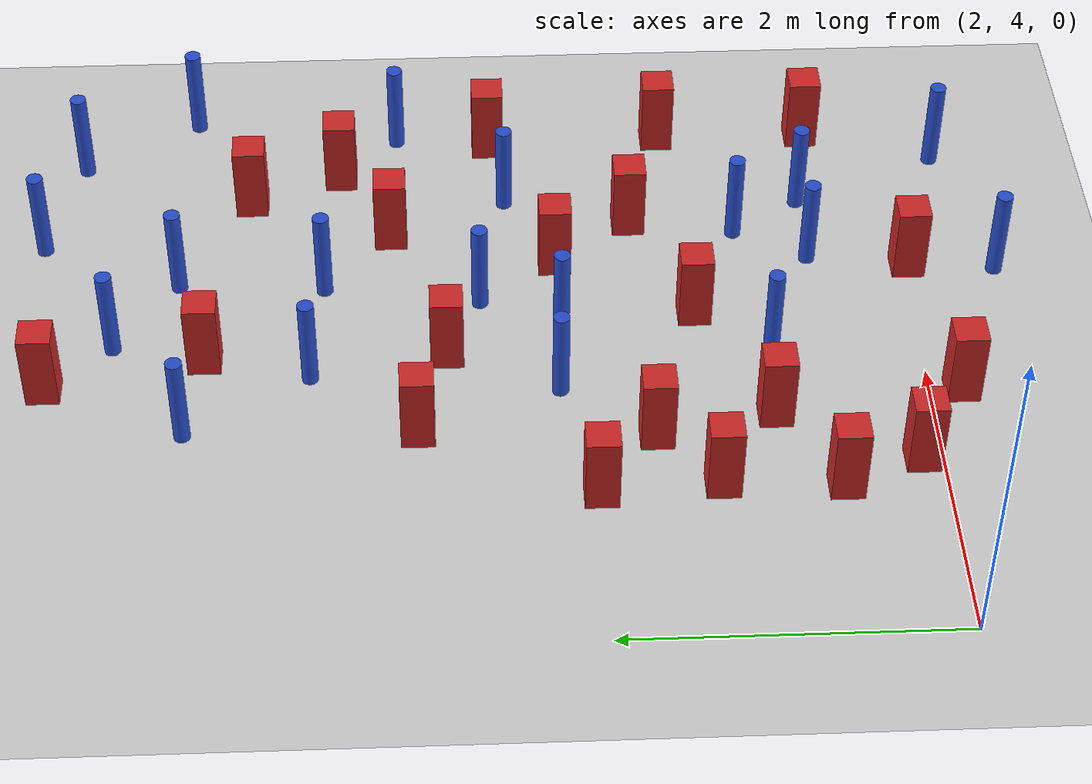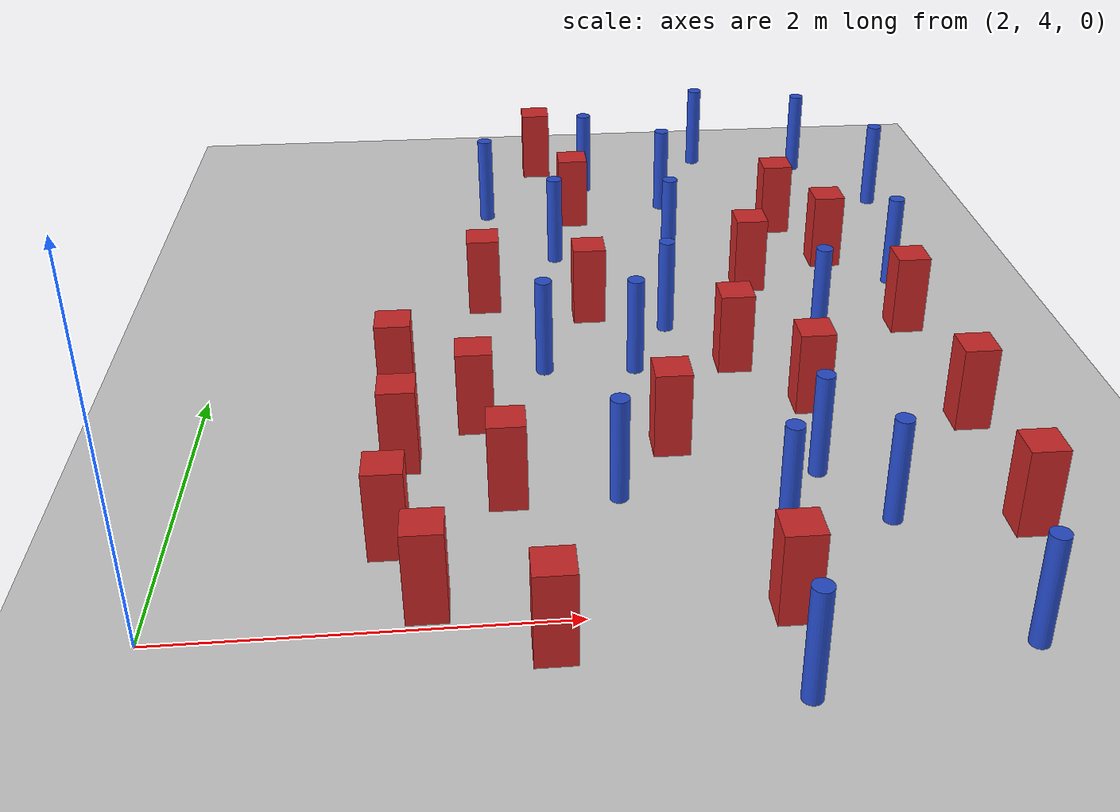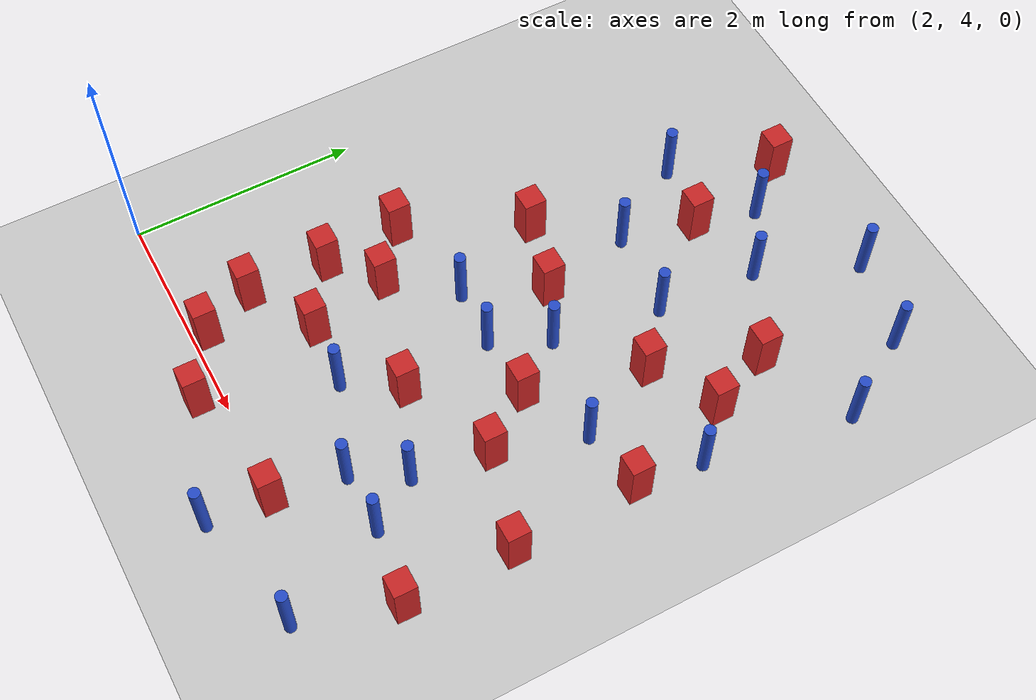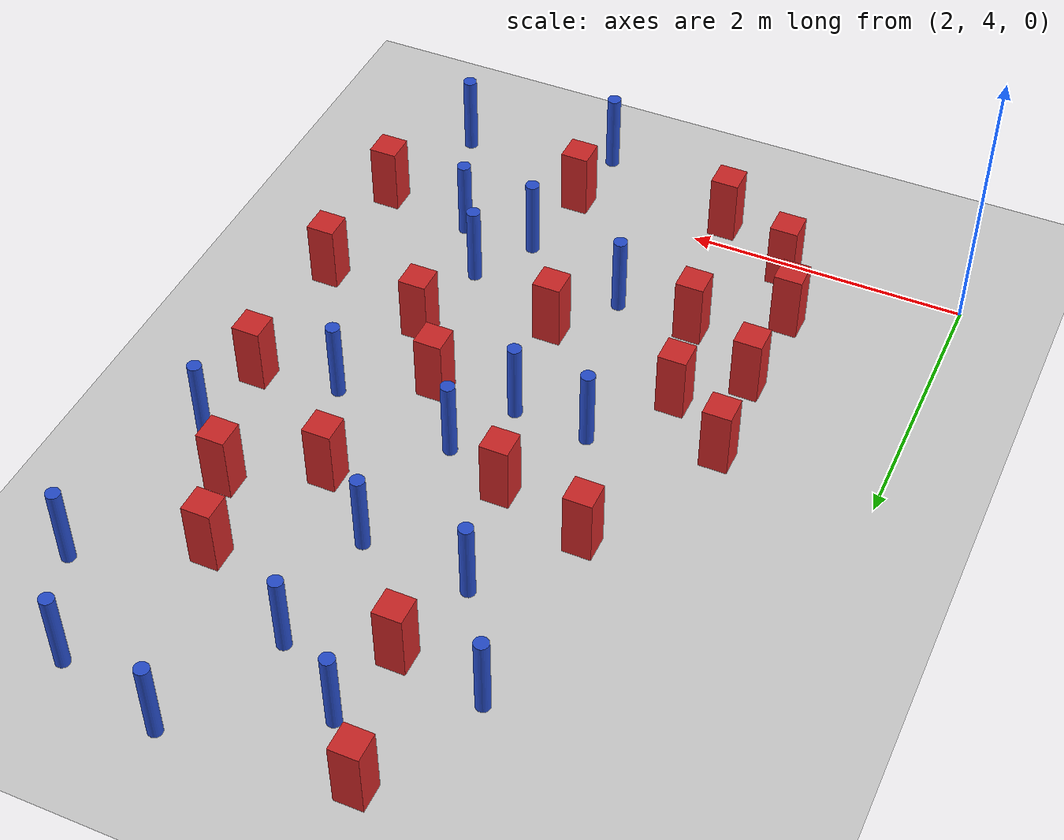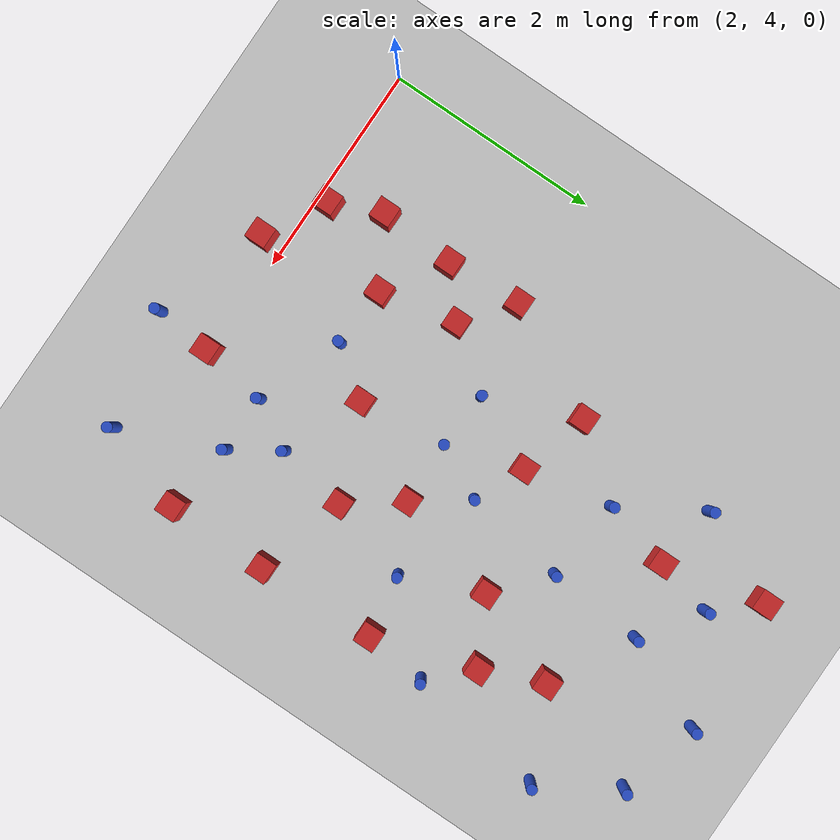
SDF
<sdf version="1.6">
 <world name="default">
  <model name="ground_plane">
   <static>1</static>
   <link name="link">
    <collision name="collision">
     <geometry><plane><normal>0 0 1</normal><size>100 100</size></plane></geometry>
     <surface><friction><ode><mu>100</mu><mu2>50</mu2></ode></friction></surface>
    </collision>
    <visual name="visual">
     <cast_shadows>0</cast_shadows>
     <geometry><plane><normal>0 0 1</normal><size>100 100</size></plane></geometry>
     <material>
      <ambient>1.0 1.0 1.0 1.0</ambient>
      <diffuse>0.8 0.8 0.8 1.0</diffuse>
      <specular>0.01 0.01 0.01 1.000000</specular>
     </material>
    </visual>
   </link>
  </model>
  <model name="pole_obstacle4">
   <static>true</static>
   <pose>4.92123123528 8.50646992746 7.38925637345e-09 -8.471706928e-08 1.24976765081e-08 -1.74513093015e-07</pose>
   <link name="link">
    <pose>0 0 0.3 0 -0 0</pose>
    <inertial>
     <mass>1</mass>
     <inertia><ixx>0.145833</ixx><ixy>0</ixy><ixz>0</ixz><iyy>0.145833</iyy><iyz>0</iyz><izz>0.125</izz></inertia>
    </inertial>
    <collision name="collision">
     <geometry><cylinder><radius>0.05</radius><length>.6</length></cylinder></geometry>
    </collision>
    <visual name="visual">
     <geometry><cylinder><radius>0.05</radius><length>.6</length></cylinder></geometry>
     <material>
      <script><name>Gazebo/Blue</name><uri>file://media/materials/scripts/gazebo.material</uri></script>
     </material>
    </visual>
   </link>
  </model>
  <model name="pole_obstacle15">
   <static>true</static>
   <pose>5.2954482456 9.36882287065 7.38925637345e-09 -8.471706928e-08 1.24976765081e-08 -1.74513093015e-07</pose>
   <link name="link">
    <pose>0 0 0.3 0 -0 0</pose>
    <inertial>
     <mass>1</mass>
     <inertia><ixx>0.145833</ixx><ixy>0</ixy><ixz>0</ixz><iyy>0.145833</iyy><iyz>0</iyz><izz>0.125</izz></inertia>
    </inertial>
    <collision name="collision">
     <geometry><cylinder><radius>0.05</radius><length>.6</length></cylinder></geometry>
    </collision>
    <visual name="visual">
     <geometry><cylinder><radius>0.05</radius><length>.6</length></cylinder></geometry>
     <material>
      <script><name>Gazebo/Blue</name><uri>file://media/materials/scripts/gazebo.material</uri></script>
     </material>
    </visual>
   </link>
  </model>
  <model name="square_post_obstacle27">
   <static>true</static>
   <pose>3.11925551717 5.30204292351 1.91545236811e-07 -7.35059704564e-06 1.12565212e-07 2.39332434364e-05</pose>
   <link name="link">
    <pose>0 0 0.25 0 -0 0</pose>
    <inertial>
     <mass>100</mass>
     <inertia>
      <ixx>0.166667</ixx>
      <ixy>0</ixy>
      <ixz>0</ixz>
      <iyy>0.166667</iyy>
      <iyz>0</iyz>
      <izz>0.166667</izz>
     </inertia>
    </inertial>
    <collision name="collision"><geometry><box><size>.2 .2 .5</size></box></geometry></collision>
    <visual name="visual">
     <geometry><box><size>.2 .2 .5</size></box></geometry>
     <material>
      <script><name>Gazebo/Red</name><uri>file://media/materials/scripts/gazebo.material</uri></script>
     </material>
    </visual>
   </link>
  </model>
  <model name="square_post_obstacle31">
   <static>true</static>
   <pose>5.40658277878 5.69323114022 1.91545236811e-07 -7.35059704564e-06 1.12565212e-07 2.39332434364e-05</pose>
   <link name="link">
    <pose>0 0 0.25 0 -0 0</pose>
    <inertial>
     <mass>100</mass>
     <inertia>
      <ixx>0.166667</ixx>
      <ixy>0</ixy>
      <ixz>0</ixz>
      <iyy>0.166667</iyy>
      <iyz>0</iyz>
      <izz>0.166667</izz>
     </inertia>
    </inertial>
    <collision name="collision"><geometry><box><size>.2 .2 .5</size></box></geometry></collision>
    <visual name="visual">
     <geometry><box><size>.2 .2 .5</size></box></geometry>
     <material>
      <script><name>Gazebo/Red</name><uri>file://media/materials/scripts/gazebo.material</uri></script>
     </material>
    </visual>
   </link>
  </model>
  <model name="square_post_obstacle37">
   <static>true</static>
   <pose>3.67285831128 4.93986969729 1.91545236811e-07 -7.35059704564e-06 1.12565212e-07 2.39332434364e-05</pose>
   <link name="link">
    <pose>0 0 0.25 0 -0 0</pose>
    <inertial>
     <mass>100</mass>
     <inertia>
      <ixx>0.166667</ixx>
      <ixy>0</ixy>
      <ixz>0</ixz>
      <iyy>0.166667</iyy>
      <iyz>0</iyz>
      <izz>0.166667</izz>
     </inertia>
    </inertial>
    <collision name="collision"><geometry><box><size>.2 .2 .5</size></box></geometry></collision>
    <visual name="visual">
     <geometry><box><size>.2 .2 .5</size></box></geometry>
     <material>
      <script><name>Gazebo/Red</name><uri>file://media/materials/scripts/gazebo.material</uri></script>
     </material>
    </visual>
   </link>
  </model>
  <model name="pole_obstacle37">
   <static>true</static>
   <pose>4.85726156089 7.60585844058 7.38925637345e-09 -8.47170692796e-08 1.24976764786e-08 -1.74513093032e-07</pose>
   <link name="link">
    <pose>0 0 0.3 0 -0 0</pose>
    <inertial>
     <mass>1</mass>
     <inertia><ixx>0.145833</ixx><ixy>0</ixy><ixz>0</ixz><iyy>0.145833</iyy><iyz>0</iyz><izz>0.125</izz></inertia>
    </inertial>
    <collision name="collision">
     <geometry><cylinder><radius>0.05</radius><length>.6</length></cylinder></geometry>
    </collision>
    <visual name="visual">
     <geometry><cylinder><radius>0.05</radius><length>.6</length></cylinder></geometry>
     <material>
      <script><name>Gazebo/Blue</name><uri>file://media/materials/scripts/gazebo.material</uri></script>
     </material>
    </visual>
   </link>
  </model>
  <model name="pole_obstacle45">
   <static>true</static>
   <pose>4.08362667837 7.68163873708 7.38925637345e-09 -8.47170692796e-08 1.24976764786e-08 -1.74513093032e-07</pose>
   <link name="link">
    <pose>0 0 0.3 0 -0 0</pose>
    <inertial>
     <mass>1</mass>
     <inertia><ixx>0.145833</ixx><ixy>0</ixy><ixz>0</ixz><iyy>0.145833</iyy><iyz>0</iyz><izz>0.125</izz></inertia>
    </inertial>
    <collision name="collision">
     <geometry><cylinder><radius>0.05</radius><length>.6</length></cylinder></geometry>
    </collision>
    <visual name="visual">
     <geometry><cylinder><radius>0.05</radius><length>.6</length></cylinder></geometry>
     <material>
      <script><name>Gazebo/Blue</name><uri>file://media/materials/scripts/gazebo.material</uri></script>
     </material>
    </visual>
   </link>
  </model>
  <model name="square_post_obstacle42">
   <static>true</static>
   <pose>3.84130354728 3.80793147247 1.91545236811e-07 -7.35059704564e-06 1.12565212e-07 2.39332434364e-05</pose>
   <link name="link">
    <pose>0 0 0.25 0 -0 0</pose>
    <inertial>
     <mass>100</mass>
     <inertia>
      <ixx>0.166667</ixx>
      <ixy>0</ixy>
      <ixz>0</ixz>
      <iyy>0.166667</iyy>
      <iyz>0</iyz>
      <izz>0.166667</izz>
     </inertia>
    </inertial>
    <collision name="collision"><geometry><box><size>.2 .2 .5</size></box></geometry></collision>
    <visual name="visual">
     <geometry><box><size>.2 .2 .5</size></box></geometry>
     <material>
      <script><name>Gazebo/Red</name><uri>file://media/materials/scripts/gazebo.material</uri></script>
     </material>
    </visual>
   </link>
  </model>
  <model name="pole_obstacle53">
   <static>true</static>
   <pose>6.285139771 7.15417417461 7.38925637345e-09 -8.47170692796e-08 1.24976764786e-08 -1.74513093032e-07</pose>
   <link name="link">
    <pose>0 0 0.3 0 -0 0</pose>
    <inertial>
     <mass>1</mass>
     <inertia><ixx>0.145833</ixx><ixy>0</ixy><ixz>0</ixz><iyy>0.145833</iyy><iyz>0</iyz><izz>0.125</izz></inertia>
    </inertial>
    <collision name="collision">
     <geometry><cylinder><radius>0.05</radius><length>.6</length></cylinder></geometry>
    </collision>
    <visual name="visual">
     <geometry><cylinder><radius>0.05</radius><length>.6</length></cylinder></geometry>
     <material>
      <script><name>Gazebo/Blue</name><uri>file://media/materials/scripts/gazebo.material</uri></script>
     </material>
    </visual>
   </link>
  </model>
  <model name="pole_obstacle54">
   <static>true</static>
   <pose>3.63076233303 8.42207366704 7.38925637345e-09 -8.47170692793e-08 1.24976764408e-08 -1.74513093041e-07</pose>
   <link name="link">
    <pose>0 0 0.3 0 -0 0</pose>
    <inertial>
     <mass>1</mass>
     <inertia><ixx>0.145833</ixx><ixy>0</ixy><ixz>0</ixz><iyy>0.145833</iyy><iyz>0</iyz><izz>0.125</izz></inertia>
    </inertial>
    <collision name="collision">
     <geometry><cylinder><radius>0.05</radius><length>.6</length></cylinder></geometry>
    </collision>
    <visual name="visual">
     <geometry><cylinder><radius>0.05</radius><length>.6</length></cylinder></geometry>
     <material>
      <script><name>Gazebo/Blue</name><uri>file://media/materials/scripts/gazebo.material</uri></script>
     </material>
    </visual>
   </link>
  </model>
  <model name="square_post_obstacle75">
   <static>true</static>
   <pose>5.67974589272 8.07805572029 1.91545236811e-07 -7.35059704564e-06 1.12565212e-07 2.39332434364e-05</pose>
   <link name="link">
    <pose>0 0 0.25 0 -0 0</pose>
    <inertial>
     <mass>100</mass>
     <inertia>
      <ixx>0.166667</ixx>
      <ixy>0</ixy>
      <ixz>0</ixz>
      <iyy>0.166667</iyy>
      <iyz>0</iyz>
      <izz>0.166667</izz>
     </inertia>
    </inertial>
    <collision name="collision"><geometry><box><size>.2 .2 .5</size></box></geometry></collision>
    <visual name="visual">
     <geometry><box><size>.2 .2 .5</size></box></geometry>
     <material>
      <script><name>Gazebo/Red</name><uri>file://media/materials/scripts/gazebo.material</uri></script>
     </material>
    </visual>
   </link>
  </model>
  <model name="pole_obstacle70">
   <static>true</static>
   <pose>6.0670929877 9.16637028866 7.38925637345e-09 -8.471706928e-08 1.24976765081e-08 -1.74513093015e-07</pose>
   <link name="link">
    <pose>0 0 0.3 0 -0 0</pose>
    <inertial>
     <mass>1</mass>
     <inertia><ixx>0.145833</ixx><ixy>0</ixy><ixz>0</ixz><iyy>0.145833</iyy><iyz>0</iyz><izz>0.125</izz></inertia>
    </inertial>
    <collision name="collision">
     <geometry><cylinder><radius>0.05</radius><length>.6</length></cylinder></geometry>
    </collision>
    <visual name="visual">
     <geometry><cylinder><radius>0.05</radius><length>.6</length></cylinder></geometry>
     <material>
      <script><name>Gazebo/Blue</name><uri>file://media/materials/scripts/gazebo.material</uri></script>
     </material>
    </visual>
   </link>
  </model>
  <model name="pole_obstacle84">
   <static>true</static>
   <pose>5.97501203008 3.67319659147 7.38925637345e-09 -8.47170692798e-08 1.24976764937e-08 -1.74513093023e-07</pose>
   <link name="link">
    <pose>0 0 0.3 0 -0 0</pose>
    <inertial>
     <mass>1</mass>
     <inertia><ixx>0.145833</ixx><ixy>0</ixy><ixz>0</ixz><iyy>0.145833</iyy><iyz>0</iyz><izz>0.125</izz></inertia>
    </inertial>
    <collision name="collision">
     <geometry><cylinder><radius>0.05</radius><length>.6</length></cylinder></geometry>
    </collision>
    <visual name="visual">
     <geometry><cylinder><radius>0.05</radius><length>.6</length></cylinder></geometry>
     <material>
      <script><name>Gazebo/Blue</name><uri>file://media/materials/scripts/gazebo.material</uri></script>
     </material>
    </visual>
   </link>
  </model>
  <model name="pole_obstacle86">
   <static>true</static>
   <pose>4.8983027293 3.43261936632 7.38925637345e-09 -8.47170692798e-08 1.24976764937e-08 -1.74513093023e-07</pose>
   <link name="link">
    <pose>0 0 0.3 0 -0 0</pose>
    <inertial>
     <mass>1</mass>
     <inertia><ixx>0.145833</ixx><ixy>0</ixy><ixz>0</ixz><iyy>0.145833</iyy><iyz>0</iyz><izz>0.125</izz></inertia>
    </inertial>
    <collision name="collision">
     <geometry><cylinder><radius>0.05</radius><length>.6</length></cylinder></geometry>
    </collision>
    <visual name="visual">
     <geometry><cylinder><radius>0.05</radius><length>.6</length></cylinder></geometry>
     <material>
      <script><name>Gazebo/Blue</name><uri>file://media/materials/scripts/gazebo.material</uri></script>
     </material>
    </visual>
   </link>
  </model>
  <model name="pole_obstacle100">
   <static>true</static>
   <pose>5.29961428321 5.03121042842 7.38925637345e-09 -8.47170692796e-08 1.24976764786e-08 -1.74513093032e-07</pose>
   <link name="link">
    <pose>0 0 0.3 0 -0 0</pose>
    <inertial>
     <mass>1</mass>
     <inertia><ixx>0.145833</ixx><ixy>0</ixy><ixz>0</ixz><iyy>0.145833</iyy><iyz>0</iyz><izz>0.125</izz></inertia>
    </inertial>
    <collision name="collision">
     <geometry><cylinder><radius>0.05</radius><length>.6</length></cylinder></geometry>
    </collision>
    <visual name="visual">
     <geometry><cylinder><radius>0.05</radius><length>.6</length></cylinder></geometry>
     <material>
      <script><name>Gazebo/Blue</name><uri>file://media/materials/scripts/gazebo.material</uri></script>
     </material>
    </visual>
   </link>
  </model>
  <model name="square_post_obstacle97">
   <static>true</static>
   <pose>5.91391910989 7.5128489551 1.91545236811e-07 -7.35059704564e-06 1.12565212e-07 2.39332434364e-05</pose>
   <link name="link">
    <pose>0 0 0.25 0 -0 0</pose>
    <inertial>
     <mass>100</mass>
     <inertia>
      <ixx>0.166667</ixx>
      <ixy>0</ixy>
      <ixz>0</ixz>
      <iyy>0.166667</iyy>
      <iyz>0</iyz>
      <izz>0.166667</izz>
     </inertia>
    </inertial>
    <collision name="collision"><geometry><box><size>.2 .2 .5</size></box></geometry></collision>
    <visual name="visual">
     <geometry><box><size>.2 .2 .5</size></box></geometry>
     <material>
      <script><name>Gazebo/Red</name><uri>file://media/materials/scripts/gazebo.material</uri></script>
     </material>
    </visual>
   </link>
  </model>
  <model name="square_post_obstacle110">
   <static>true</static>
   <pose>6.2070752471 6.56133386793 1.91545236811e-07 -7.35059704564e-06 1.12565212e-07 2.39332434364e-05</pose>
   <link name="link">
    <pose>0 0 0.25 0 -0 0</pose>
    <inertial>
     <mass>100</mass>
     <inertia>
      <ixx>0.166667</ixx>
      <ixy>0</ixy>
      <ixz>0</ixz>
      <iyy>0.166667</iyy>
      <iyz>0</iyz>
      <izz>0.166667</izz>
     </inertia>
    </inertial>
    <collision name="collision"><geometry><box><size>.2 .2 .5</size></box></geometry></collision>
    <visual name="visual">
     <geometry><box><size>.2 .2 .5</size></box></geometry>
     <material>
      <script><name>Gazebo/Red</name><uri>file://media/materials/scripts/gazebo.material</uri></script>
     </material>
    </visual>
   </link>
  </model>
  <model name="square_post_obstacle112">
   <static>true</static>
   <pose>6.24314671431 4.49891998833 1.91545236811e-07 -7.35059704564e-06 1.12565212e-07 2.39332434364e-05</pose>
   <link name="link">
    <pose>0 0 0.25 0 -0 0</pose>
    <inertial>
     <mass>100</mass>
     <inertia>
      <ixx>0.166667</ixx>
      <ixy>0</ixy>
      <ixz>0</ixz>
      <iyy>0.166667</iyy>
      <iyz>0</iyz>
      <izz>0.166667</izz>
     </inertia>
    </inertial>
    <collision name="collision"><geometry><box><size>.2 .2 .5</size></box></geometry></collision>
    <visual name="visual">
     <geometry><box><size>.2 .2 .5</size></box></geometry>
     <material>
      <script><name>Gazebo/Red</name><uri>file://media/materials/scripts/gazebo.material</uri></script>
     </material>
    </visual>
   </link>
  </model>
  <model name="square_post_obstacle114">
   <static>true</static>
   <pose>5.04928227468 6.1761450967 1.91545236811e-07 -7.35059704564e-06 1.12565212e-07 2.39332434364e-05</pose>
   <link name="link">
    <pose>0 0 0.25 0 -0 0</pose>
    <inertial>
     <mass>100</mass>
     <inertia>
      <ixx>0.166667</ixx>
      <ixy>0</ixy>
      <ixz>0</ixz>
      <iyy>0.166667</iyy>
      <iyz>0</iyz>
      <izz>0.166667</izz>
     </inertia>
    </inertial>
    <collision name="collision"><geometry><box><size>.2 .2 .5</size></box></geometry></collision>
    <visual name="visual">
     <geometry><box><size>.2 .2 .5</size></box></geometry>
     <material>
      <script><name>Gazebo/Red</name><uri>file://media/materials/scripts/gazebo.material</uri></script>
     </material>
    </visual>
   </link>
  </model>
  <model name="square_post_obstacle120">
   <static>true</static>
   <pose>6.24600844041 5.45172950169 1.91545236811e-07 -7.35059704564e-06 1.12565212e-07 2.39332434364e-05</pose>
   <link name="link">
    <pose>0 0 0.25 0 -0 0</pose>
    <inertial>
     <mass>100</mass>
     <inertia>
      <ixx>0.166667</ixx>
      <ixy>0</ixy>
      <ixz>0</ixz>
      <iyy>0.166667</iyy>
      <iyz>0</iyz>
      <izz>0.166667</izz>
     </inertia>
    </inertial>
    <collision name="collision"><geometry><box><size>.2 .2 .5</size></box></geometry></collision>
    <visual name="visual">
     <geometry><box><size>.2 .2 .5</size></box></geometry>
     <material>
      <script><name>Gazebo/Red</name><uri>file://media/materials/scripts/gazebo.material</uri></script>
     </material>
    </visual>
   </link>
  </model>
  <model name="square_post_obstacle127">
   <static>true</static>
   <pose>3.27967101463 4.12862583577 1.91545236811e-07 -7.35059704564e-06 1.12565212e-07 2.39332434364e-05</pose>
   <link name="link">
    <pose>0 0 0.25 0 -0 0</pose>
    <inertial>
     <mass>100</mass>
     <inertia>
      <ixx>0.166667</ixx>
      <ixy>0</ixy>
      <ixz>0</ixz>
      <iyy>0.166667</iyy>
      <iyz>0</iyz>
      <izz>0.166667</izz>
     </inertia>
    </inertial>
    <collision name="collision"><geometry><box><size>.2 .2 .5</size></box></geometry></collision>
    <visual name="visual">
     <geometry><box><size>.2 .2 .5</size></box></geometry>
     <material>
      <script><name>Gazebo/Red</name><uri>file://media/materials/scripts/gazebo.material</uri></script>
     </material>
    </visual>
   </link>
  </model>
  <model name="square_post_obstacle129">
   <static>true</static>
   <pose>4.55897571774 5.34434781311 1.91545236811e-07 -7.35059704564e-06 1.12565212e-07 2.39332434364e-05</pose>
   <link name="link">
    <pose>0 0 0.25 0 -0 0</pose>
    <inertial>
     <mass>100</mass>
     <inertia>
      <ixx>0.166667</ixx>
      <ixy>0</ixy>
      <ixz>0</ixz>
      <iyy>0.166667</iyy>
      <iyz>0</iyz>
      <izz>0.166667</izz>
     </inertia>
    </inertial>
    <collision name="collision"><geometry><box><size>.2 .2 .5</size></box></geometry></collision>
    <visual name="visual">
     <geometry><box><size>.2 .2 .5</size></box></geometry>
     <material>
      <script><name>Gazebo/Red</name><uri>file://media/materials/scripts/gazebo.material</uri></script>
     </material>
    </visual>
   </link>
  </model>
  <model name="square_post_obstacle130">
   <static>true</static>
   <pose>3.08511404522 4.59632683058 1.91545236811e-07 -7.35059704564e-06 1.12565212e-07 2.39332434364e-05</pose>
   <link name="link">
    <pose>0 0 0.25 0 -0 0</pose>
    <inertial>
     <mass>100</mass>
     <inertia>
      <ixx>0.166667</ixx>
      <ixy>0</ixy>
      <ixz>0</ixz>
      <iyy>0.166667</iyy>
      <iyz>0</iyz>
      <izz>0.166667</izz>
     </inertia>
    </inertial>
    <collision name="collision"><geometry><box><size>.2 .2 .5</size></box></geometry></collision>
    <visual name="visual">
     <geometry><box><size>.2 .2 .5</size></box></geometry>
     <material>
      <script><name>Gazebo/Red</name><uri>file://media/materials/scripts/gazebo.material</uri></script>
     </material>
    </visual>
   </link>
  </model>
  <model name="square_post_obstacle134">
   <static>true</static>
   <pose>4.24744561423 8.31666862912 1.91545236811e-07 -7.35059704564e-06 1.12565212e-07 2.39332434364e-05</pose>
   <link name="link">
    <pose>0 0 0.25 0 -0 0</pose>
    <inertial>
     <mass>100</mass>
     <inertia>
      <ixx>0.166667</ixx>
      <ixy>0</ixy>
      <ixz>0</ixz>
      <iyy>0.166667</iyy>
      <iyz>0</iyz>
      <izz>0.166667</izz>
     </inertia>
    </inertial>
    <collision name="collision"><geometry><box><size>.2 .2 .5</size></box></geometry></collision>
    <visual name="visual">
     <geometry><box><size>.2 .2 .5</size></box></geometry>
     <material>
      <script><name>Gazebo/Red</name><uri>file://media/materials/scripts/gazebo.material</uri></script>
     </material>
    </visual>
   </link>
  </model>
  <model name="pole_obstacle148">
   <static>true</static>
   <pose>5.57990338509 4.59775783071 7.38925637345e-09 -8.47170692796e-08 1.24976764786e-08 -1.74513093032e-07</pose>
   <link name="link">
    <pose>0 0 0.3 0 -0 0</pose>
    <inertial>
     <mass>1</mass>
     <inertia><ixx>0.145833</ixx><ixy>0</ixy><ixz>0</ixz><iyy>0.145833</iyy><iyz>0</iyz><izz>0.125</izz></inertia>
    </inertial>
    <collision name="collision">
     <geometry><cylinder><radius>0.05</radius><length>.6</length></cylinder></geometry>
    </collision>
    <visual name="visual">
     <geometry><cylinder><radius>0.05</radius><length>.6</length></cylinder></geometry>
     <material>
      <script><name>Gazebo/Blue</name><uri>file://media/materials/scripts/gazebo.material</uri></script>
     </material>
    </visual>
   </link>
  </model>
  <model name="square_post_obstacle137">
   <static>true</static>
   <pose>4.94383989922 3.97546784478 1.91545236811e-07 -7.35059704564e-06 1.12565212e-07 2.39332434364e-05</pose>
   <link name="link">
    <pose>0 0 0.25 0 -0 0</pose>
    <inertial>
     <mass>100</mass>
     <inertia>
      <ixx>0.166667</ixx>
      <ixy>0</ixy>
      <ixz>0</ixz>
      <iyy>0.166667</iyy>
      <iyz>0</iyz>
      <izz>0.166667</izz>
     </inertia>
    </inertial>
    <collision name="collision"><geometry><box><size>.2 .2 .5</size></box></geometry></collision>
    <visual name="visual">
     <geometry><box><size>.2 .2 .5</size></box></geometry>
     <material>
      <script><name>Gazebo/Red</name><uri>file://media/materials/scripts/gazebo.material</uri></script>
     </material>
    </visual>
   </link>
  </model>
  <model name="square_post_obstacle140">
   <static>true</static>
   <pose>3.51981278126 5.65038298557 1.91545236811e-07 -7.35059704564e-06 1.12565212e-07 2.39332434364e-05</pose>
   <link name="link">
    <pose>0 0 0.25 0 -0 0</pose>
    <inertial>
     <mass>100</mass>
     <inertia>
      <ixx>0.166667</ixx>
      <ixy>0</ixy>
      <ixz>0</ixz>
      <iyy>0.166667</iyy>
      <iyz>0</iyz>
      <izz>0.166667</izz>
     </inertia>
    </inertial>
    <collision name="collision"><geometry><box><size>.2 .2 .5</size></box></geometry></collision>
    <visual name="visual">
     <geometry><box><size>.2 .2 .5</size></box></geometry>
     <material>
      <script><name>Gazebo/Red</name><uri>file://media/materials/scripts/gazebo.material</uri></script>
     </material>
    </visual>
   </link>
  </model>
  <model name="square_post_obstacle144">
   <static>true</static>
   <pose>3.59022465571 7.04267144804 1.91545236811e-07 -7.35059704564e-06 1.12565212e-07 2.39332434364e-05</pose>
   <link name="link">
    <pose>0 0 0.25 0 -0 0</pose>
    <inertial>
     <mass>100</mass>
     <inertia>
      <ixx>0.166667</ixx>
      <ixy>0</ixy>
      <ixz>0</ixz>
      <iyy>0.166667</iyy>
      <iyz>0</iyz>
      <izz>0.166667</izz>
     </inertia>
    </inertial>
    <collision name="collision"><geometry><box><size>.2 .2 .5</size></box></geometry></collision>
    <visual name="visual">
     <geometry><box><size>.2 .2 .5</size></box></geometry>
     <material>
      <script><name>Gazebo/Red</name><uri>file://media/materials/scripts/gazebo.material</uri></script>
     </material>
    </visual>
   </link>
  </model>
  <model name="square_post_obstacle153">
   <static>true</static>
   <pose>4.24442954807 6.86071463461 1.91545236811e-07 -7.35059704564e-06 1.12565212e-07 2.39332434364e-05</pose>
   <link name="link">
    <pose>0 0 0.25 0 -0 0</pose>
    <inertial>
     <mass>100</mass>
     <inertia>
      <ixx>0.166667</ixx>
      <ixy>0</ixy>
      <ixz>0</ixz>
      <iyy>0.166667</iyy>
      <iyz>0</iyz>
      <izz>0.166667</izz>
     </inertia>
    </inertial>
    <collision name="collision"><geometry><box><size>.2 .2 .5</size></box></geometry></collision>
    <visual name="visual">
     <geometry><box><size>.2 .2 .5</size></box></geometry>
     <material>
      <script><name>Gazebo/Red</name><uri>file://media/materials/scripts/gazebo.material</uri></script>
     </material>
    </visual>
   </link>
  </model>
  <model name="pole_obstacle165">
   <static>true</static>
   <pose>5.64071032349 6.47075185656 7.38925637345e-09 -8.47170692796e-08 1.24976764786e-08 -1.74513093032e-07</pose>
   <link name="link">
    <pose>0 0 0.3 0 -0 0</pose>
    <inertial>
     <mass>1</mass>
     <inertia><ixx>0.145833</ixx><ixy>0</ixy><ixz>0</ixz><iyy>0.145833</iyy><iyz>0</iyz><izz>0.125</izz></inertia>
    </inertial>
    <collision name="collision">
     <geometry><cylinder><radius>0.05</radius><length>.6</length></cylinder></geometry>
    </collision>
    <visual name="visual">
     <geometry><cylinder><radius>0.05</radius><length>.6</length></cylinder></geometry>
     <material>
      <script><name>Gazebo/Blue</name><uri>file://media/materials/scripts/gazebo.material</uri></script>
     </material>
    </visual>
   </link>
  </model>
  <model name="square_post_obstacle158">
   <static>true</static>
   <pose>3.07263737514 6.00183538461 1.91545236811e-07 -7.35059704564e-06 1.12565212e-07 2.39332434364e-05</pose>
   <link name="link">
    <pose>0 0 0.25 0 -0 0</pose>
    <inertial>
     <mass>100</mass>
     <inertia>
      <ixx>0.166667</ixx>
      <ixy>0</ixy>
      <ixz>0</ixz>
      <iyy>0.166667</iyy>
      <iyz>0</iyz>
      <izz>0.166667</izz>
     </inertia>
    </inertial>
    <collision name="collision"><geometry><box><size>.2 .2 .5</size></box></geometry></collision>
    <visual name="visual">
     <geometry><box><size>.2 .2 .5</size></box></geometry>
     <material>
      <script><name>Gazebo/Red</name><uri>file://media/materials/scripts/gazebo.material</uri></script>
     </material>
    </visual>
   </link>
  </model>
  <model name="pole_obstacle173">
   <static>true</static>
   <pose>4.23784137271 4.90005820384 7.38925637345e-09 -8.47170692796e-08 1.24976764786e-08 -1.74513093032e-07</pose>
   <link name="link">
    <pose>0 0 0.3 0 -0 0</pose>
    <inertial>
     <mass>1</mass>
     <inertia><ixx>0.145833</ixx><ixy>0</ixy><ixz>0</ixz><iyy>0.145833</iyy><iyz>0</iyz><izz>0.125</izz></inertia>
    </inertial>
    <collision name="collision">
     <geometry><cylinder><radius>0.05</radius><length>.6</length></cylinder></geometry>
    </collision>
    <visual name="visual">
     <geometry><cylinder><radius>0.05</radius><length>.6</length></cylinder></geometry>
     <material>
      <script><name>Gazebo/Blue</name><uri>file://media/materials/scripts/gazebo.material</uri></script>
     </material>
    </visual>
   </link>
  </model>
  <model name="square_post_obstacle180">
   <static>true</static>
   <pose>4.02912967646 9.26178256638 1.91545236811e-07 -7.35059704564e-06 1.12565212e-07 2.39332434364e-05</pose>
   <link name="link">
    <pose>0 0 0.25 0 -0 0</pose>
    <inertial>
     <mass>100</mass>
     <inertia>
      <ixx>0.166667</ixx>
      <ixy>0</ixy>
      <ixz>0</ixz>
      <iyy>0.166667</iyy>
      <iyz>0</iyz>
      <izz>0.166667</izz>
     </inertia>
    </inertial>
    <collision name="collision"><geometry><box><size>.2 .2 .5</size></box></geometry></collision>
    <visual name="visual">
     <geometry><box><size>.2 .2 .5</size></box></geometry>
     <material>
      <script><name>Gazebo/Red</name><uri>file://media/materials/scripts/gazebo.material</uri></script>
     </material>
    </visual>
   </link>
  </model>
  <model name="pole_obstacle194">
   <static>true</static>
   <pose>4.70963600196 6.64985895192 7.38925637345e-09 -8.47170692796e-08 1.24976764786e-08 -1.74513093032e-07</pose>
   <link name="link">
    <pose>0 0 0.3 0 -0 0</pose>
    <inertial>
     <mass>1</mass>
     <inertia><ixx>0.145833</ixx><ixy>0</ixy><ixz>0</ixz><iyy>0.145833</iyy><iyz>0</iyz><izz>0.125</izz></inertia>
    </inertial>
    <collision name="collision">
     <geometry><cylinder><radius>0.05</radius><length>.6</length></cylinder></geometry>
    </collision>
    <visual name="visual">
     <geometry><cylinder><radius>0.05</radius><length>.6</length></cylinder></geometry>
     <material>
      <script><name>Gazebo/Blue</name><uri>file://media/materials/scripts/gazebo.material</uri></script>
     </material>
    </visual>
   </link>
  </model>
  <model name="square_post_obstacle204">
   <static>true</static>
   <pose>5.32801910128 7.19468811797 1.91545236811e-07 -7.35059704564e-06 1.12565212e-07 2.39332434364e-05</pose>
   <link name="link">
    <pose>0 0 0.25 0 -0 0</pose>
    <inertial>
     <mass>100</mass>
     <inertia>
      <ixx>0.166667</ixx>
      <ixy>0</ixy>
      <ixz>0</ixz>
      <iyy>0.166667</iyy>
      <iyz>0</iyz>
      <izz>0.166667</izz>
     </inertia>
    </inertial>
    <collision name="collision"><geometry><box><size>.2 .2 .5</size></box></geometry></collision>
    <visual name="visual">
     <geometry><box><size>.2 .2 .5</size></box></geometry>
     <material>
      <script><name>Gazebo/Red</name><uri>file://media/materials/scripts/gazebo.material</uri></script>
     </material>
    </visual>
   </link>
  </model>
  <model name="pole_obstacle233">
   <static>true</static>
   <pose>4.37707000957 8.87974002078 7.38925637345e-09 -8.471706928e-08 1.24976765081e-08 -1.74513093015e-07</pose>
   <link name="link">
    <pose>0 0 0.3 0 -0 0</pose>
    <inertial>
     <mass>1</mass>
     <inertia><ixx>0.145833</ixx><ixy>0</ixy><ixz>0</ixz><iyy>0.145833</iyy><iyz>0</iyz><izz>0.125</izz></inertia>
    </inertial>
    <collision name="collision">
     <geometry><cylinder><radius>0.05</radius><length>.6</length></cylinder></geometry>
    </collision>
    <visual name="visual">
     <geometry><cylinder><radius>0.05</radius><length>.6</length></cylinder></geometry>
     <material>
      <script><name>Gazebo/Blue</name><uri>file://media/materials/scripts/gazebo.material</uri></script>
     </material>
    </visual>
   </link>
  </model>
  <model name="pole_obstacle242">
   <static>true</static>
   <pose>3.92810000957 6.19163002078 7.38925637345e-09 -8.47170692794e-08 1.24976764468e-08 -1.7451309304e-07</pose>
   <link name="link">
    <pose>0 0 0.3 0 -0 0</pose>
    <inertial>
     <mass>1</mass>
     <inertia><ixx>0.145833</ixx><ixy>0</ixy><ixz>0</ixz><iyy>0.145833</iyy><iyz>0</iyz><izz>0.125</izz></inertia>
    </inertial>
    <collision name="collision">
     <geometry><cylinder><radius>0.05</radius><length>.6</length></cylinder></geometry>
    </collision>
    <visual name="visual">
     <geometry><cylinder><radius>0.05</radius><length>.6</length></cylinder></geometry>
     <material>
      <script><name>Gazebo/Blue</name><uri>file://media/materials/scripts/gazebo.material</uri></script>
     </material>
    </visual>
   </link>
  </model>
  <model name="pole_obstacle246">
   <static>true</static>
   <pose>4.46370000957 6.16068002078 7.38925637345e-09 -8.47170692796e-08 1.24976764786e-08 -1.74513093032e-07</pose>
   <link name="link">
    <pose>0 0 0.3 0 -0 0</pose>
    <inertial>
     <mass>1</mass>
     <inertia><ixx>0.145833</ixx><ixy>0</ixy><ixz>0</ixz><iyy>0.145833</iyy><iyz>0</iyz><izz>0.125</izz></inertia>
    </inertial>
    <collision name="collision">
     <geometry><cylinder><radius>0.05</radius><length>.6</length></cylinder></geometry>
    </collision>
    <visual name="visual">
     <geometry><cylinder><radius>0.05</radius><length>.6</length></cylinder></geometry>
     <material>
      <script><name>Gazebo/Blue</name><uri>file://media/materials/scripts/gazebo.material</uri></script>
     </material>
    </visual>
   </link>
  </model>
  <model name="pole_obstacle250">
   <static>true</static>
   <pose>6.49408000957 8.46094002078 7.38925637345e-09 -8.471706928e-08 1.24976765081e-08 -1.74513093015e-07</pose>
   <link name="link">
    <pose>0 0 0.3 0 -0 0</pose>
    <inertial>
     <mass>1</mass>
     <inertia><ixx>0.145833</ixx><ixy>0</ixy><ixz>0</ixz><iyy>0.145833</iyy><iyz>0</iyz><izz>0.125</izz></inertia>
    </inertial>
    <collision name="collision">
     <geometry><cylinder><radius>0.05</radius><length>.6</length></cylinder></geometry>
    </collision>
    <visual name="visual">
     <geometry><cylinder><radius>0.05</radius><length>.6</length></cylinder></geometry>
     <material>
      <script><name>Gazebo/Blue</name><uri>file://media/materials/scripts/gazebo.material</uri></script>
     </material>
    </visual>
   </link>
  </model>
  <model name="pole_obstacle255">
   <static>true</static>
   <pose>5.04406000957 4.59051002078 7.38925637345e-09 -8.47170692796e-08 1.24976764786e-08 -1.74513093032e-07</pose>
   <link name="link">
    <pose>0 0 0.3 0 -0 0</pose>
    <inertial>
     <mass>1</mass>
     <inertia><ixx>0.145833</ixx><ixy>0</ixy><ixz>0</ixz><iyy>0.145833</iyy><iyz>0</iyz><izz>0.125</izz></inertia>
    </inertial>
    <collision name="collision">
     <geometry><cylinder><radius>0.05</radius><length>.6</length></cylinder></geometry>
    </collision>
    <visual name="visual">
     <geometry><cylinder><radius>0.05</radius><length>.6</length></cylinder></geometry>
     <material>
      <script><name>Gazebo/Blue</name><uri>file://media/materials/scripts/gazebo.material</uri></script>
     </material>
    </visual>
   </link>
  </model>
 </world>
</sdf>
